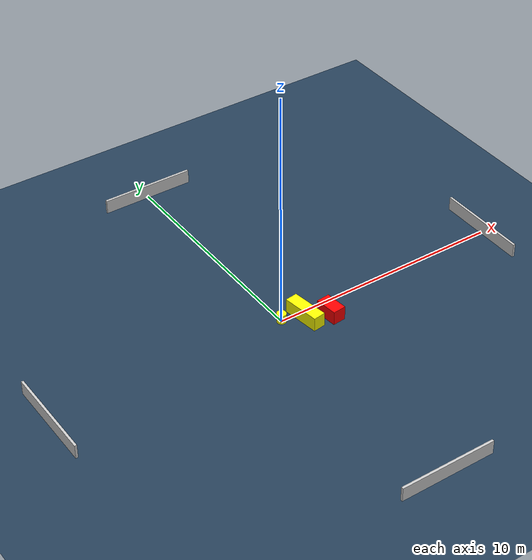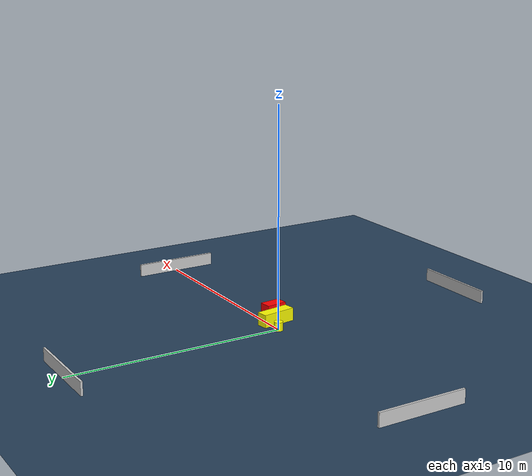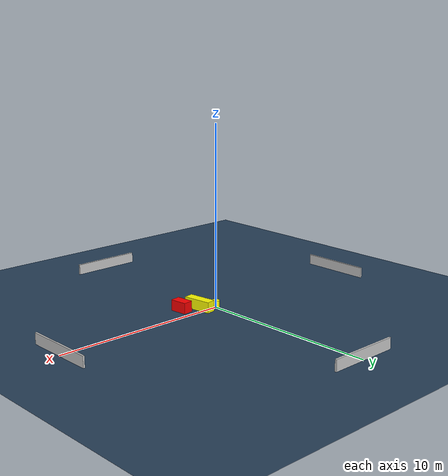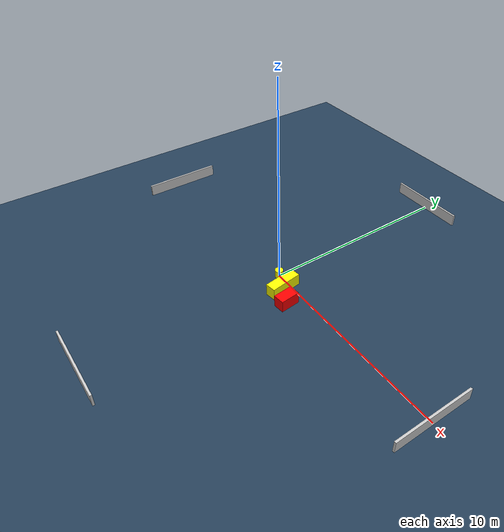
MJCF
<?xml version="1.0" ?>
<mujoco model="generated_environment">
  <option timestep="0.01" integrator="RK4" cone="elliptic"/>
  <default>
    <geom density="1"/>
  </default>
  <asset>
    <texture builtin="gradient" height="3072" name="skybox" rgb1="0.3 0.5 0.7" rgb2="0 0 0" type="skybox" width="512"/>
    <texture builtin="checker" height="300" name="groundplane" rgb1="0.2 0.3 0.4" rgb2="0.1 0.2 0.3" type="2d" width="300"/>
    <material name="groundplane" reflectance="0.2" texrepeat="5 5" texture="groundplane"/>
  </asset>
  <worldbody>
    <light dir="0 0 -1" directional="true" pos="0 0 1.5"/>
    <geom condim="3" friction="0.5 0.005 0.001" material="groundplane" name="floor" pos="0 0 0" size="0 0 0.05" type="plane"/>
    <body name="walls">
      <geom name="wall_1" condim="4" pos="-10.0 0.0 0.3" rgba="0.800000011920929 0.800000011920929 0.800000011920929 1.0" size="0.05 2.0 0.3" type="box"/>
      <geom name="wall_2" condim="4" pos="10.0 0.0 0.3" rgba="0.800000011920929 0.800000011920929 0.800000011920929 1.0" size="0.05 2.0 0.3" type="box"/>
      <geom name="wall_3" condim="4" pos="0.0 -10.0 0.3" rgba="0.800000011920929 0.800000011920929 0.800000011920929 1.0" size="2.0 0.05 0.3" type="box"/>
      <geom name="wall_4" condim="4" pos="0.0 10.0 0.3" rgba="0.800000011920929 0.800000011920929 0.800000011920929 1.0" size="2.0 0.05 0.3" type="box"/>
    </body>
    <body name="robot">
      <joint name="joint_x" type="slide" pos="0 0 0" axis="1 0 0"/>
      <joint name="joint_y" type="slide" pos="0 0 0" axis="0 1 0"/>
      <geom name="robot" type="cylinder" pos="0.0 0.0 0.2" size="0.2 0.2 0.0" mass="5.0" friction="1.0 0.005 0.0001" condim="4" rgba="1.0 1.0 0.0 1.0"/>
    </body>
    <body name="obstacle_1_movable">
      <geom name="obstacle_1_movable" condim="4" pos="0.8475567994711359 -0.3714222616034735 0.3" euler="0 0 278.0448173043138" friction="0.0 0.005 0.001" rgba="1.0 1.0 0.0 1.0" size="0.7964966403445635 0.26307127036785183 0.3" type="box" mass="0.1"/>
      <joint type="free"/>
    </body>
    <body name="obstacle_2_static">
      <geom name="obstacle_2_static" condim="4" pos="1.7558385748329246 -0.8086164889468862 0.3" euler="0 0 95.90343206123029" friction="0.0 0.005 0.001" rgba="1.0 0.0 0.0 1.0" size="0.4821113648444916 0.2816755136569682 0.3" type="box"/>
    </body>
  </worldbody>
  <actuator>
    <motor name="actuator_x" joint="joint_x" gear="1" ctrlrange="-1 1"/>
    <motor name="actuator_y" joint="joint_y" gear="1" ctrlrange="-1 1"/>
  </actuator>
</mujoco>
